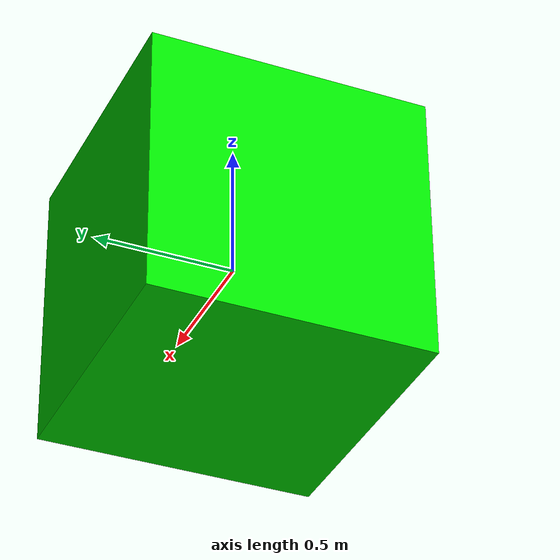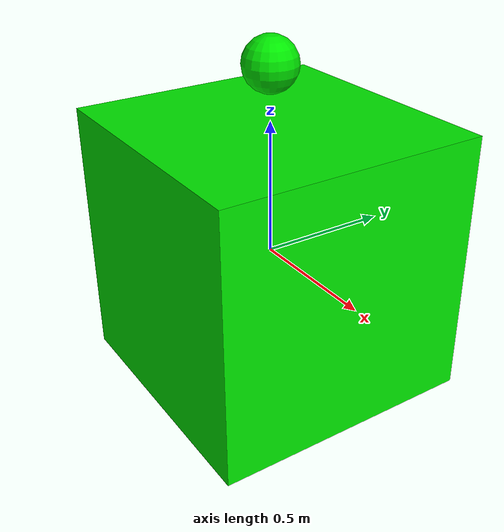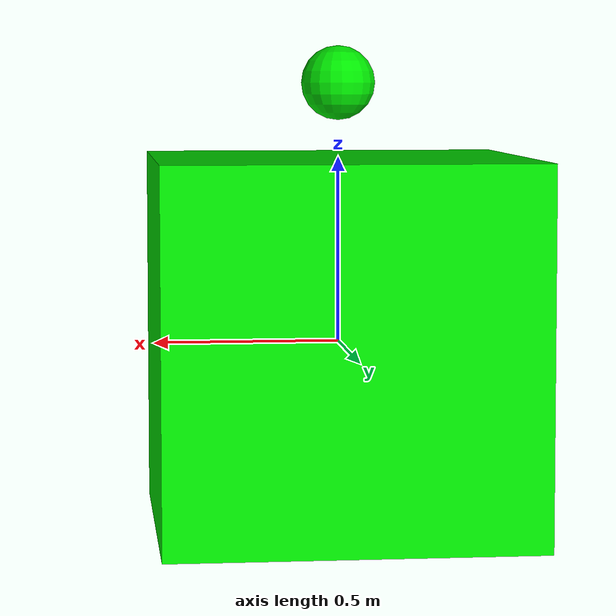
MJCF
<!-- Needs to be placed in the correct folder, where gym is installed: "..\Lib\site-packages\gym\envs\mujoco\assets" -->

<mujoco model="model">
  <default>
    <motor ctrllimited="true" ctrlrange="-45 45"/>
  </default>
  <option gravity="0 0 -9.81" integrator="RK4" timestep="0.005"/>
  <worldbody>
    <light diffuse=".4 .4 .4" pos="0 0 3" dir="0 0 -1"/>
    <body name="agent" pos="0 0 0">
      <joint type="hinge" axis="1 0 0" name="x_agent" limited="true" range="-10 10"/>
      <joint type="hinge" axis="0 1 0" name="y_agent" limited="true" range="-10 10"/>
      <geom type="box" size=".5 .5 .5" rgba="0 .9 0 1"/>
    </body>
    <body name="ball" pos="0 0 0.7">
      <joint type="free"/>
      <geom type="sphere" size=".1" rgba="0 .9 0 1"/>
    </body>
  </worldbody>
  <actuator>
    <motor ctrllimited="true" ctrlrange="-45 45" gear="750.0" joint="x_agent" name="x_agnt"/>
    <motor ctrllimited="true" ctrlrange="-45 45" gear="750.0" joint="y_agent" name="y_agnt"/>
  </actuator>
</mujoco>
